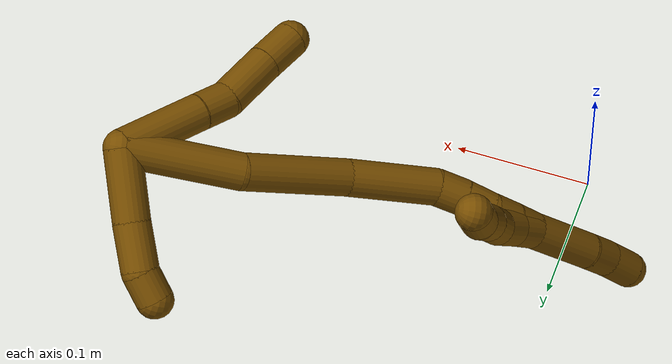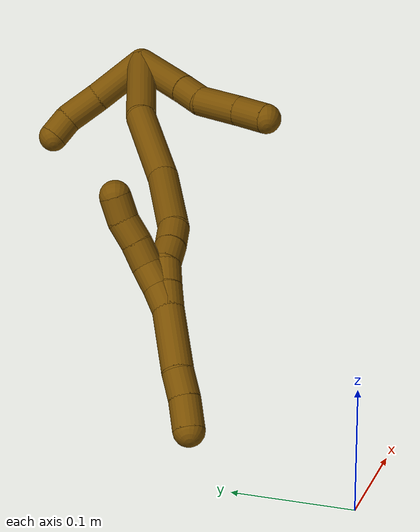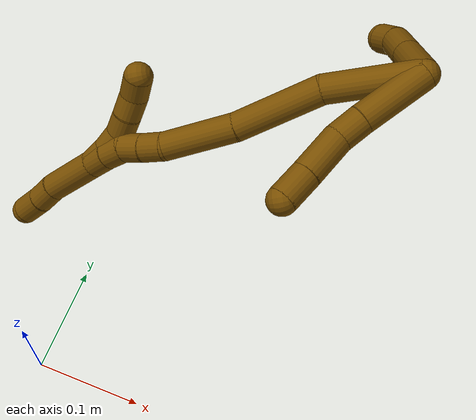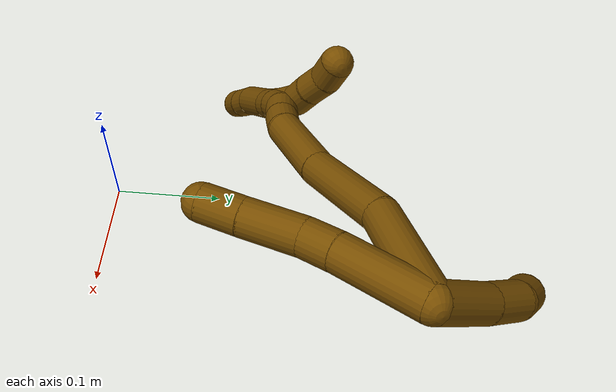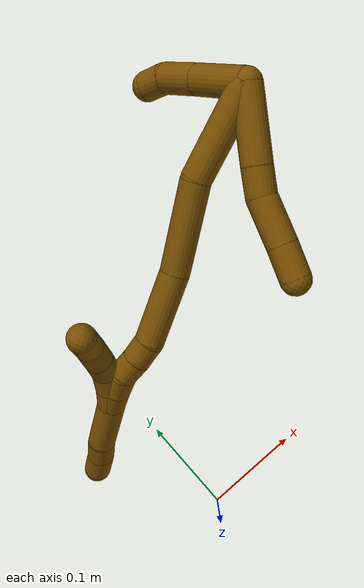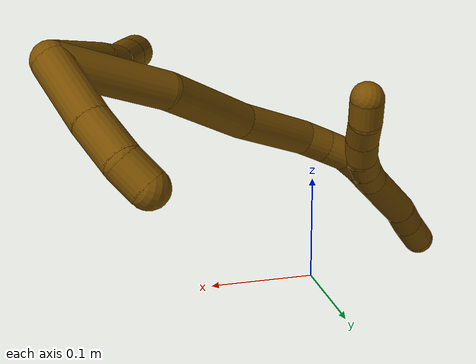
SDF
<sdf version="1.7">
 <world name="default">
  <model name="12">
   <static>0</static>
   <link name="12">
    <collision name="collision-cylinder-e_1_2_8">
     <pose>-0.00915 -0.014722 -0.024603 2.60237 -0.30892 -1.0262</pose>
     <geometry><cylinder><radius>0.0125</radius><length>0.060193</length></cylinder></geometry>
     <surface>
      <friction><ode><mu>1.16</mu><mu2>1.16</mu2><slip1>0</slip1><slip2>0</slip2></ode></friction>
      <contact><ode><kp>1e+06</kp><kd>1</kd><max_vel>0</max_vel><min_depth>0.001</min_depth></ode></contact>
     </surface>
    </collision>
    <visual name="visual-cylinder-e_1_2_8">
     <pose>-0.00915 -0.014722 -0.024603 2.60237 -0.30892 -1.0262</pose>
     <geometry><cylinder><radius>0.0125</radius><length>0.060193</length></cylinder></geometry>
     <material><ambient>0.466667 0.301961 0 1</ambient></material>
    </visual>
    <collision name="collision-cylinder-e_2_8_9">
     <pose>-0.021217 -0.035491 -0.058573 2.56833 -0.255907 -0.82314</pose>
     <geometry><cylinder><radius>0.0125</radius><length>0.023047</length></cylinder></geometry>
     <surface>
      <friction><ode><mu>1.16</mu><mu2>1.16</mu2><slip1>0</slip1><slip2>0</slip2></ode></friction>
      <contact><ode><kp>1e+06</kp><kd>1</kd><max_vel>0</max_vel><min_depth>0.001</min_depth></ode></contact>
     </surface>
    </collision>
    <visual name="visual-cylinder-e_2_8_9">
     <pose>-0.021217 -0.035491 -0.058573 2.56833 -0.255907 -0.82314</pose>
     <geometry><cylinder><radius>0.0125</radius><length>0.023047</length></cylinder></geometry>
     <material><ambient>0.466667 0.301961 0 1</ambient></material>
    </visual>
    <collision name="collision-cylinder-e_3_9_10">
     <pose>-0.032401 -0.054687 -0.08006 2.31553 -0.432995 -0.930303</pose>
     <geometry><cylinder><radius>0.0125</radius><length>0.039404</length></cylinder></geometry>
     <surface>
      <friction><ode><mu>1.16</mu><mu2>1.16</mu2><slip1>0</slip1><slip2>0</slip2></ode></friction>
      <contact><ode><kp>1e+06</kp><kd>1</kd><max_vel>0</max_vel><min_depth>0.001</min_depth></ode></contact>
     </surface>
    </collision>
    <visual name="visual-cylinder-e_3_9_10">
     <pose>-0.032401 -0.054687 -0.08006 2.31553 -0.432995 -0.930303</pose>
     <geometry><cylinder><radius>0.0125</radius><length>0.039404</length></cylinder></geometry>
     <material><ambient>0.466667 0.301961 0 1</ambient></material>
    </visual>
    <collision name="collision-cylinder-e_4_10_6">
     <pose>-0.046311 -0.076708 -0.100929 2.34916 -0.425325 -0.952969</pose>
     <geometry><cylinder><radius>0.0125</radius><length>0.027356</length></cylinder></geometry>
     <surface>
      <friction><ode><mu>1.16</mu><mu2>1.16</mu2><slip1>0</slip1><slip2>0</slip2></ode></friction>
      <contact><ode><kp>1e+06</kp><kd>1</kd><max_vel>0</max_vel><min_depth>0.001</min_depth></ode></contact>
     </surface>
    </collision>
    <visual name="visual-cylinder-e_4_10_6">
     <pose>-0.046311 -0.076708 -0.100929 2.34916 -0.425325 -0.952969</pose>
     <geometry><cylinder><radius>0.0125</radius><length>0.027356</length></cylinder></geometry>
     <material><ambient>0.466667 0.301961 0 1</ambient></material>
    </visual>
    <collision name="collision-cylinder-e_1_2_11">
     <pose>0.017825 0.014305 -0.007143 -2.0339 0.839633 -1.25039</pose>
     <geometry><cylinder><radius>0.0125</radius><length>0.047891</length></cylinder></geometry>
     <surface>
      <friction><ode><mu>1.16</mu><mu2>1.16</mu2><slip1>0</slip1><slip2>0</slip2></ode></friction>
      <contact><ode><kp>1e+06</kp><kd>1</kd><max_vel>0</max_vel><min_depth>0.001</min_depth></ode></contact>
     </surface>
    </collision>
    <visual name="visual-cylinder-e_1_2_11">
     <pose>0.017825 0.014305 -0.007143 -2.0339 0.839633 -1.25039</pose>
     <geometry><cylinder><radius>0.0125</radius><length>0.047891</length></cylinder></geometry>
     <material><ambient>0.466667 0.301961 0 1</ambient></material>
    </visual>
    <collision name="collision-cylinder-e_2_11_12">
     <pose>0.046742 0.038826 -0.019555 -2.04702 0.767581 -1.17045</pose>
     <geometry><cylinder><radius>0.0125</radius><length>0.031949</length></cylinder></geometry>
     <surface>
      <friction><ode><mu>1.16</mu><mu2>1.16</mu2><slip1>0</slip1><slip2>0</slip2></ode></friction>
      <contact><ode><kp>1e+06</kp><kd>1</kd><max_vel>0</max_vel><min_depth>0.001</min_depth></ode></contact>
     </surface>
    </collision>
    <visual name="visual-cylinder-e_2_11_12">
     <pose>0.046742 0.038826 -0.019555 -2.04702 0.767581 -1.17045</pose>
     <geometry><cylinder><radius>0.0125</radius><length>0.031949</length></cylinder></geometry>
     <material><ambient>0.466667 0.301961 0 1</ambient></material>
    </visual>
    <collision name="collision-cylinder-e_3_12_5">
     <pose>0.064157 0.05375 -0.031108 -2.49853 0.677881 -1.62753</pose>
     <geometry><cylinder><radius>0.0125</radius><length>0.02016</length></cylinder></geometry>
     <surface>
      <friction><ode><mu>1.16</mu><mu2>1.16</mu2><slip1>0</slip1><slip2>0</slip2></ode></friction>
      <contact><ode><kp>1e+06</kp><kd>1</kd><max_vel>0</max_vel><min_depth>0.001</min_depth></ode></contact>
     </surface>
    </collision>
    <visual name="visual-cylinder-e_3_12_5">
     <pose>0.064157 0.05375 -0.031108 -2.49853 0.677881 -1.62753</pose>
     <geometry><cylinder><radius>0.0125</radius><length>0.02016</length></cylinder></geometry>
     <material><ambient>0.466667 0.301961 0 1</ambient></material>
    </visual>
    <collision name="collision-cylinder-e_1_2_13">
     <pose>-0.0012 0.002417 -0.039649 -3.08072 -0.030191 0.920638</pose>
     <geometry><cylinder><radius>0.0125</radius><length>0.079481</length></cylinder></geometry>
     <surface>
      <friction><ode><mu>1.16</mu><mu2>1.16</mu2><slip1>0</slip1><slip2>0</slip2></ode></friction>
      <contact><ode><kp>1e+06</kp><kd>1</kd><max_vel>0</max_vel><min_depth>0.001</min_depth></ode></contact>
     </surface>
    </collision>
    <visual name="visual-cylinder-e_1_2_13">
     <pose>-0.0012 0.002417 -0.039649 -3.08072 -0.030191 0.920638</pose>
     <geometry><cylinder><radius>0.0125</radius><length>0.079481</length></cylinder></geometry>
     <material><ambient>0.466667 0.301961 0 1</ambient></material>
    </visual>
    <collision name="collision-cylinder-e_2_13_14">
     <pose>-0.002551 -0.003069 -0.116676 2.93325 -0.003968 -0.037949</pose>
     <geometry><cylinder><radius>0.0125</radius><length>0.076409</length></cylinder></geometry>
     <surface>
      <friction><ode><mu>1.16</mu><mu2>1.16</mu2><slip1>0</slip1><slip2>0</slip2></ode></friction>
      <contact><ode><kp>1e+06</kp><kd>1</kd><max_vel>0</max_vel><min_depth>0.001</min_depth></ode></contact>
     </surface>
    </collision>
    <visual name="visual-cylinder-e_2_13_14">
     <pose>-0.002551 -0.003069 -0.116676 2.93325 -0.003968 -0.037949</pose>
     <geometry><cylinder><radius>0.0125</radius><length>0.076409</length></cylinder></geometry>
     <material><ambient>0.466667 0.301961 0 1</ambient></material>
    </visual>
    <collision name="collision-cylinder-e_3_14_15">
     <pose>-0.004223 -0.013244 -0.185807 3.07011 -0.04774 -1.17744</pose>
     <geometry><cylinder><radius>0.0125</radius><length>0.063741</length></cylinder></geometry>
     <surface>
      <friction><ode><mu>1.16</mu><mu2>1.16</mu2><slip1>0</slip1><slip2>0</slip2></ode></friction>
      <contact><ode><kp>1e+06</kp><kd>1</kd><max_vel>0</max_vel><min_depth>0.001</min_depth></ode></contact>
     </surface>
    </collision>
    <visual name="visual-cylinder-e_3_14_15">
     <pose>-0.004223 -0.013244 -0.185807 3.07011 -0.04774 -1.17744</pose>
     <geometry><cylinder><radius>0.0125</radius><length>0.063741</length></cylinder></geometry>
     <material><ambient>0.466667 0.301961 0 1</ambient></material>
    </visual>
    <collision name="collision-cylinder-e_4_15_16">
     <pose>-0.004647 -0.014022 -0.227571 -2.99319 0.108028 -1.25765</pose>
     <geometry><cylinder><radius>0.0125</radius><length>0.020363</length></cylinder></geometry>
     <surface>
      <friction><ode><mu>1.16</mu><mu2>1.16</mu2><slip1>0</slip1><slip2>0</slip2></ode></friction>
      <contact><ode><kp>1e+06</kp><kd>1</kd><max_vel>0</max_vel><min_depth>0.001</min_depth></ode></contact>
     </surface>
    </collision>
    <visual name="visual-cylinder-e_4_15_16">
     <pose>-0.004647 -0.014022 -0.227571 -2.99319 0.108028 -1.25765</pose>
     <geometry><cylinder><radius>0.0125</radius><length>0.020363</length></cylinder></geometry>
     <material><ambient>0.466667 0.301961 0 1</ambient></material>
    </visual>
    <collision name="collision-cylinder-e_5_16_17">
     <pose>-0.002013 -0.010276 -0.247205 -2.912 0.15421 -1.18066</pose>
     <geometry><cylinder><radius>0.0125</radius><length>0.020003</length></cylinder></geometry>
     <surface>
      <friction><ode><mu>1.16</mu><mu2>1.16</mu2><slip1>0</slip1><slip2>0</slip2></ode></friction>
      <contact><ode><kp>1e+06</kp><kd>1</kd><max_vel>0</max_vel><min_depth>0.001</min_depth></ode></contact>
     </surface>
    </collision>
    <visual name="visual-cylinder-e_5_16_17">
     <pose>-0.002013 -0.010276 -0.247205 -2.912 0.15421 -1.18066</pose>
     <geometry><cylinder><radius>0.0125</radius><length>0.020003</length></cylinder></geometry>
     <material><ambient>0.466667 0.301961 0 1</ambient></material>
    </visual>
    <collision name="collision-cylinder-e_6_17_18">
     <pose>0.002347 -0.008998 -0.266373 3.04015 0.286171 2.46403</pose>
     <geometry><cylinder><radius>0.0125</radius><length>0.020001</length></cylinder></geometry>
     <surface>
      <friction><ode><mu>1.16</mu><mu2>1.16</mu2><slip1>0</slip1><slip2>0</slip2></ode></friction>
      <contact><ode><kp>1e+06</kp><kd>1</kd><max_vel>0</max_vel><min_depth>0.001</min_depth></ode></contact>
     </surface>
    </collision>
    <visual name="visual-cylinder-e_6_17_18">
     <pose>0.002347 -0.008998 -0.266373 3.04015 0.286171 2.46403</pose>
     <geometry><cylinder><radius>0.0125</radius><length>0.020001</length></cylinder></geometry>
     <material><ambient>0.466667 0.301961 0 1</ambient></material>
    </visual>
    <collision name="collision-cylinder-e_7_18_1">
     <pose>0.008603 -0.0115 -0.285185 2.97789 0.350488 2.27384</pose>
     <geometry><cylinder><radius>0.0125</radius><length>0.020001</length></cylinder></geometry>
     <surface>
      <friction><ode><mu>1.16</mu><mu2>1.16</mu2><slip1>0</slip1><slip2>0</slip2></ode></friction>
      <contact><ode><kp>1e+06</kp><kd>1</kd><max_vel>0</max_vel><min_depth>0.001</min_depth></ode></contact>
     </surface>
    </collision>
    <visual name="visual-cylinder-e_7_18_1">
     <pose>0.008603 -0.0115 -0.285185 2.97789 0.350488 2.27384</pose>
     <geometry><cylinder><radius>0.0125</radius><length>0.020001</length></cylinder></geometry>
     <material><ambient>0.466667 0.301961 0 1</ambient></material>
    </visual>
    <collision name="collision-cylinder-e_1_1_19">
     <pose>0.01957 -0.01808 -0.319105 2.93959 0.290852 1.93096</pose>
     <geometry><cylinder><radius>0.0125</radius><length>0.052536</length></cylinder></geometry>
     <surface>
      <friction><ode><mu>1.16</mu><mu2>1.16</mu2><slip1>0</slip1><slip2>0</slip2></ode></friction>
      <contact><ode><kp>1e+06</kp><kd>1</kd><max_vel>0</max_vel><min_depth>0.001</min_depth></ode></contact>
     </surface>
    </collision>
    <visual name="visual-cylinder-e_1_1_19">
     <pose>0.01957 -0.01808 -0.319105 2.93959 0.290852 1.93096</pose>
     <geometry><cylinder><radius>0.0125</radius><length>0.052536</length></cylinder></geometry>
     <material><ambient>0.466667 0.301961 0 1</ambient></material>
    </visual>
    <collision name="collision-cylinder-e_2_19_20">
     <pose>0.031126 -0.026642 -0.353498 2.79539 0.370645 1.64043</pose>
     <geometry><cylinder><radius>0.0125</radius><length>0.022216</length></cylinder></geometry>
     <surface>
      <friction><ode><mu>1.16</mu><mu2>1.16</mu2><slip1>0</slip1><slip2>0</slip2></ode></friction>
      <contact><ode><kp>1e+06</kp><kd>1</kd><max_vel>0</max_vel><min_depth>0.001</min_depth></ode></contact>
     </surface>
    </collision>
    <visual name="visual-cylinder-e_2_19_20">
     <pose>0.031126 -0.026642 -0.353498 2.79539 0.370645 1.64043</pose>
     <geometry><cylinder><radius>0.0125</radius><length>0.022216</length></cylinder></geometry>
     <material><ambient>0.466667 0.301961 0 1</ambient></material>
    </visual>
    <collision name="collision-cylinder-e_3_20_4">
     <pose>0.039927 -0.032848 -0.374608 2.90914 0.388091 2.06943</pose>
     <geometry><cylinder><radius>0.0125</radius><length>0.025248</length></cylinder></geometry>
     <surface>
      <friction><ode><mu>1.16</mu><mu2>1.16</mu2><slip1>0</slip1><slip2>0</slip2></ode></friction>
      <contact><ode><kp>1e+06</kp><kd>1</kd><max_vel>0</max_vel><min_depth>0.001</min_depth></ode></contact>
     </surface>
    </collision>
    <visual name="visual-cylinder-e_3_20_4">
     <pose>0.039927 -0.032848 -0.374608 2.90914 0.388091 2.06943</pose>
     <geometry><cylinder><radius>0.0125</radius><length>0.025248</length></cylinder></geometry>
     <material><ambient>0.466667 0.301961 0 1</ambient></material>
    </visual>
    <collision name="collision-cylinder-e_1_1_21">
     <pose>0.009663 -0.008796 -0.28571 -0.451179 -0.2397 0.055261</pose>
     <geometry><cylinder><radius>0.0125</radius><length>0.02</length></cylinder></geometry>
     <surface>
      <friction><ode><mu>1.16</mu><mu2>1.16</mu2><slip1>0</slip1><slip2>0</slip2></ode></friction>
      <contact><ode><kp>1e+06</kp><kd>1</kd><max_vel>0</max_vel><min_depth>0.001</min_depth></ode></contact>
     </surface>
    </collision>
    <visual name="visual-cylinder-e_1_1_21">
     <pose>0.009663 -0.008796 -0.28571 -0.451179 -0.2397 0.055261</pose>
     <geometry><cylinder><radius>0.0125</radius><length>0.02</length></cylinder></geometry>
     <material><ambient>0.466667 0.301961 0 1</ambient></material>
    </visual>
    <collision name="collision-cylinder-e_2_21_22">
     <pose>0.004622 0.000563 -0.268804 -0.560389 -0.269922 0.078109</pose>
     <geometry><cylinder><radius>0.0125</radius><length>0.02</length></cylinder></geometry>
     <surface>
      <friction><ode><mu>1.16</mu><mu2>1.16</mu2><slip1>0</slip1><slip2>0</slip2></ode></friction>
      <contact><ode><kp>1e+06</kp><kd>1</kd><max_vel>0</max_vel><min_depth>0.001</min_depth></ode></contact>
     </surface>
    </collision>
    <visual name="visual-cylinder-e_2_21_22">
     <pose>0.004622 0.000563 -0.268804 -0.560389 -0.269922 0.078109</pose>
     <geometry><cylinder><radius>0.0125</radius><length>0.02</length></cylinder></geometry>
     <material><ambient>0.466667 0.301961 0 1</ambient></material>
    </visual>
    <collision name="collision-cylinder-e_3_22_23">
     <pose>-0.003009 0.011463 -0.254162 -0.728269 -0.519553 0.201907</pose>
     <geometry><cylinder><radius>0.0125</radius><length>0.02</length></cylinder></geometry>
     <surface>
      <friction><ode><mu>1.16</mu><mu2>1.16</mu2><slip1>0</slip1><slip2>0</slip2></ode></friction>
      <contact><ode><kp>1e+06</kp><kd>1</kd><max_vel>0</max_vel><min_depth>0.001</min_depth></ode></contact>
     </surface>
    </collision>
    <visual name="visual-cylinder-e_3_22_23">
     <pose>-0.003009 0.011463 -0.254162 -0.728269 -0.519553 0.201907</pose>
     <geometry><cylinder><radius>0.0125</radius><length>0.02</length></cylinder></geometry>
     <material><ambient>0.466667 0.301961 0 1</ambient></material>
    </visual>
    <collision name="collision-cylinder-e_4_23_24">
     <pose>-0.012242 0.023774 -0.241431 -0.807373 -0.440965 0.190887</pose>
     <geometry><cylinder><radius>0.0125</radius><length>0.02</length></cylinder></geometry>
     <surface>
      <friction><ode><mu>1.16</mu><mu2>1.16</mu2><slip1>0</slip1><slip2>0</slip2></ode></friction>
      <contact><ode><kp>1e+06</kp><kd>1</kd><max_vel>0</max_vel><min_depth>0.001</min_depth></ode></contact>
     </surface>
    </collision>
    <visual name="visual-cylinder-e_4_23_24">
     <pose>-0.012242 0.023774 -0.241431 -0.807373 -0.440965 0.190887</pose>
     <geometry><cylinder><radius>0.0125</radius><length>0.02</length></cylinder></geometry>
     <material><ambient>0.466667 0.301961 0 1</ambient></material>
    </visual>
    <collision name="collision-cylinder-e_5_24_3">
     <pose>-0.022988 0.03548 -0.229585 -0.74624 -0.704632 0.28588</pose>
     <geometry><cylinder><radius>0.0125</radius><length>0.02</length></cylinder></geometry>
     <surface>
      <friction><ode><mu>1.16</mu><mu2>1.16</mu2><slip1>0</slip1><slip2>0</slip2></ode></friction>
      <contact><ode><kp>1e+06</kp><kd>1</kd><max_vel>0</max_vel><min_depth>0.001</min_depth></ode></contact>
     </surface>
    </collision>
    <visual name="visual-cylinder-e_5_24_3">
     <pose>-0.022988 0.03548 -0.229585 -0.74624 -0.704632 0.28588</pose>
     <geometry><cylinder><radius>0.0125</radius><length>0.02</length></cylinder></geometry>
     <material><ambient>0.466667 0.301961 0 1</ambient></material>
    </visual>
    <collision name="collision-sphere-3">
     <pose>-0.029465 0.040652 -0.223991 0 -0 0</pose>
     <geometry><sphere><radius>0.0125</radius></sphere></geometry>
     <surface>
      <friction><ode><mu>1.16</mu><mu2>1.16</mu2><slip1>0</slip1><slip2>0</slip2></ode></friction>
      <contact><ode><kp>1e+06</kp><kd>1</kd><max_vel>0</max_vel><min_depth>0.001</min_depth></ode></contact>
     </surface>
    </collision>
    <visual name="visual-sphere-3">
     <pose>-0.029465 0.040652 -0.223991 0 -0 0</pose>
     <geometry><sphere><radius>0.0125</radius></sphere></geometry>
     <material><ambient>0.466667 0.301961 0 1</ambient></material>
    </visual>
    <collision name="collision-sphere-24">
     <pose>-0.01651 0.030308 -0.235178 0 -0 0</pose>
     <geometry><sphere><radius>0.0125</radius></sphere></geometry>
     <surface>
      <friction><ode><mu>1.16</mu><mu2>1.16</mu2><slip1>0</slip1><slip2>0</slip2></ode></friction>
      <contact><ode><kp>1e+06</kp><kd>1</kd><max_vel>0</max_vel><min_depth>0.001</min_depth></ode></contact>
     </surface>
    </collision>
    <visual name="visual-sphere-24">
     <pose>-0.01651 0.030308 -0.235178 0 -0 0</pose>
     <geometry><sphere><radius>0.0125</radius></sphere></geometry>
     <material><ambient>0.466667 0.301961 0 1</ambient></material>
    </visual>
    <collision name="collision-sphere-23">
     <pose>-0.007974 0.01724 -0.247684 0 -0 0</pose>
     <geometry><sphere><radius>0.0125</radius></sphere></geometry>
     <surface>
      <friction><ode><mu>1.16</mu><mu2>1.16</mu2><slip1>0</slip1><slip2>0</slip2></ode></friction>
      <contact><ode><kp>1e+06</kp><kd>1</kd><max_vel>0</max_vel><min_depth>0.001</min_depth></ode></contact>
     </surface>
    </collision>
    <visual name="visual-sphere-23">
     <pose>-0.007974 0.01724 -0.247684 0 -0 0</pose>
     <geometry><sphere><radius>0.0125</radius></sphere></geometry>
     <material><ambient>0.466667 0.301961 0 1</ambient></material>
    </visual>
    <collision name="collision-sphere-22">
     <pose>0.001956 0.005685 -0.26064 0 -0 0</pose>
     <geometry><sphere><radius>0.0125</radius></sphere></geometry>
     <surface>
      <friction><ode><mu>1.16</mu><mu2>1.16</mu2><slip1>0</slip1><slip2>0</slip2></ode></friction>
      <contact><ode><kp>1e+06</kp><kd>1</kd><max_vel>0</max_vel><min_depth>0.001</min_depth></ode></contact>
     </surface>
    </collision>
    <visual name="visual-sphere-22">
     <pose>0.001956 0.005685 -0.26064 0 -0 0</pose>
     <geometry><sphere><radius>0.0125</radius></sphere></geometry>
     <material><ambient>0.466667 0.301961 0 1</ambient></material>
    </visual>
    <collision name="collision-sphere-21">
     <pose>0.007289 -0.00456 -0.276968 0 -0 0</pose>
     <geometry><sphere><radius>0.0125</radius></sphere></geometry>
     <surface>
      <friction><ode><mu>1.16</mu><mu2>1.16</mu2><slip1>0</slip1><slip2>0</slip2></ode></friction>
      <contact><ode><kp>1e+06</kp><kd>1</kd><max_vel>0</max_vel><min_depth>0.001</min_depth></ode></contact>
     </surface>
    </collision>
    <visual name="visual-sphere-21">
     <pose>0.007289 -0.00456 -0.276968 0 -0 0</pose>
     <geometry><sphere><radius>0.0125</radius></sphere></geometry>
     <material><ambient>0.466667 0.301961 0 1</ambient></material>
    </visual>
    <collision name="collision-sphere-4">
     <pose>0.044704 -0.035539 -0.385979 0 -0 0</pose>
     <geometry><sphere><radius>0.0125</radius></sphere></geometry>
     <surface>
      <friction><ode><mu>1.16</mu><mu2>1.16</mu2><slip1>0</slip1><slip2>0</slip2></ode></friction>
      <contact><ode><kp>1e+06</kp><kd>1</kd><max_vel>0</max_vel><min_depth>0.001</min_depth></ode></contact>
     </surface>
    </collision>
    <visual name="visual-sphere-4">
     <pose>0.044704 -0.035539 -0.385979 0 -0 0</pose>
     <geometry><sphere><radius>0.0125</radius></sphere></geometry>
     <material><ambient>0.466667 0.301961 0 1</ambient></material>
    </visual>
    <collision name="collision-sphere-20">
     <pose>0.03515 -0.030156 -0.363237 0 -0 0</pose>
     <geometry><sphere><radius>0.0125</radius></sphere></geometry>
     <surface>
      <friction><ode><mu>1.16</mu><mu2>1.16</mu2><slip1>0</slip1><slip2>0</slip2></ode></friction>
      <contact><ode><kp>1e+06</kp><kd>1</kd><max_vel>0</max_vel><min_depth>0.001</min_depth></ode></contact>
     </surface>
    </collision>
    <visual name="visual-sphere-20">
     <pose>0.03515 -0.030156 -0.363237 0 -0 0</pose>
     <geometry><sphere><radius>0.0125</radius></sphere></geometry>
     <material><ambient>0.466667 0.301961 0 1</ambient></material>
    </visual>
    <collision name="collision-sphere-11">
     <pose>0.03565 0.02861 -0.014286 0 -0 0</pose>
     <geometry><sphere><radius>0.0125</radius></sphere></geometry>
     <surface>
      <friction><ode><mu>1.16</mu><mu2>1.16</mu2><slip1>0</slip1><slip2>0</slip2></ode></friction>
      <contact><ode><kp>1e+06</kp><kd>1</kd><max_vel>0</max_vel><min_depth>0.001</min_depth></ode></contact>
     </surface>
    </collision>
    <visual name="visual-sphere-11">
     <pose>0.03565 0.02861 -0.014286 0 -0 0</pose>
     <geometry><sphere><radius>0.0125</radius></sphere></geometry>
     <material><ambient>0.466667 0.301961 0 1</ambient></material>
    </visual>
    <collision name="collision-sphere-6">
     <pose>-0.051955 -0.08558 -0.109677 0 -0 0</pose>
     <geometry><sphere><radius>0.0125</radius></sphere></geometry>
     <surface>
      <friction><ode><mu>1.16</mu><mu2>1.16</mu2><slip1>0</slip1><slip2>0</slip2></ode></friction>
      <contact><ode><kp>1e+06</kp><kd>1</kd><max_vel>0</max_vel><min_depth>0.001</min_depth></ode></contact>
     </surface>
    </collision>
    <visual name="visual-sphere-6">
     <pose>-0.051955 -0.08558 -0.109677 0 -0 0</pose>
     <geometry><sphere><radius>0.0125</radius></sphere></geometry>
     <material><ambient>0.466667 0.301961 0 1</ambient></material>
    </visual>
    <collision name="collision-sphere-10">
     <pose>-0.040668 -0.067836 -0.092182 0 -0 0</pose>
     <geometry><sphere><radius>0.0125</radius></sphere></geometry>
     <surface>
      <friction><ode><mu>1.16</mu><mu2>1.16</mu2><slip1>0</slip1><slip2>0</slip2></ode></friction>
      <contact><ode><kp>1e+06</kp><kd>1</kd><max_vel>0</max_vel><min_depth>0.001</min_depth></ode></contact>
     </surface>
    </collision>
    <visual name="visual-sphere-10">
     <pose>-0.040668 -0.067836 -0.092182 0 -0 0</pose>
     <geometry><sphere><radius>0.0125</radius></sphere></geometry>
     <material><ambient>0.466667 0.301961 0 1</ambient></material>
    </visual>
    <collision name="collision-sphere-9">
     <pose>-0.024134 -0.041537 -0.067939 0 -0 0</pose>
     <geometry><sphere><radius>0.0125</radius></sphere></geometry>
     <surface>
      <friction><ode><mu>1.16</mu><mu2>1.16</mu2><slip1>0</slip1><slip2>0</slip2></ode></friction>
      <contact><ode><kp>1e+06</kp><kd>1</kd><max_vel>0</max_vel><min_depth>0.001</min_depth></ode></contact>
     </surface>
    </collision>
    <visual name="visual-sphere-9">
     <pose>-0.024134 -0.041537 -0.067939 0 -0 0</pose>
     <geometry><sphere><radius>0.0125</radius></sphere></geometry>
     <material><ambient>0.466667 0.301961 0 1</ambient></material>
    </visual>
    <collision name="collision-sphere-2">
     <geometry><sphere><radius>0.0125</radius></sphere></geometry>
     <surface>
      <friction><ode><mu>1.16</mu><mu2>1.16</mu2><slip1>0</slip1><slip2>0</slip2></ode></friction>
      <contact><ode><kp>1e+06</kp><kd>1</kd><max_vel>0</max_vel><min_depth>0.001</min_depth></ode></contact>
     </surface>
    </collision>
    <visual name="visual-sphere-2">
     <geometry><sphere><radius>0.0125</radius></sphere></geometry>
     <material><ambient>0.466667 0.301961 0 1</ambient></material>
    </visual>
    <collision name="collision-sphere-19">
     <pose>0.027103 -0.023129 -0.343758 0 -0 0</pose>
     <geometry><sphere><radius>0.0125</radius></sphere></geometry>
     <surface>
      <friction><ode><mu>1.16</mu><mu2>1.16</mu2><slip1>0</slip1><slip2>0</slip2></ode></friction>
      <contact><ode><kp>1e+06</kp><kd>1</kd><max_vel>0</max_vel><min_depth>0.001</min_depth></ode></contact>
     </surface>
    </collision>
    <visual name="visual-sphere-19">
     <pose>0.027103 -0.023129 -0.343758 0 -0 0</pose>
     <geometry><sphere><radius>0.0125</radius></sphere></geometry>
     <material><ambient>0.466667 0.301961 0 1</ambient></material>
    </visual>
    <collision name="collision-sphere-8">
     <pose>-0.0183 -0.029444 -0.049207 0 -0 0</pose>
     <geometry><sphere><radius>0.0125</radius></sphere></geometry>
     <surface>
      <friction><ode><mu>1.16</mu><mu2>1.16</mu2><slip1>0</slip1><slip2>0</slip2></ode></friction>
      <contact><ode><kp>1e+06</kp><kd>1</kd><max_vel>0</max_vel><min_depth>0.001</min_depth></ode></contact>
     </surface>
    </collision>
    <visual name="visual-sphere-8">
     <pose>-0.0183 -0.029444 -0.049207 0 -0 0</pose>
     <geometry><sphere><radius>0.0125</radius></sphere></geometry>
     <material><ambient>0.466667 0.301961 0 1</ambient></material>
    </visual>
    <collision name="collision-sphere-12">
     <pose>0.057835 0.049042 -0.024825 0 -0 0</pose>
     <geometry><sphere><radius>0.0125</radius></sphere></geometry>
     <surface>
      <friction><ode><mu>1.16</mu><mu2>1.16</mu2><slip1>0</slip1><slip2>0</slip2></ode></friction>
      <contact><ode><kp>1e+06</kp><kd>1</kd><max_vel>0</max_vel><min_depth>0.001</min_depth></ode></contact>
     </surface>
    </collision>
    <visual name="visual-sphere-12">
     <pose>0.057835 0.049042 -0.024825 0 -0 0</pose>
     <geometry><sphere><radius>0.0125</radius></sphere></geometry>
     <material><ambient>0.466667 0.301961 0 1</ambient></material>
    </visual>
    <collision name="collision-sphere-5">
     <pose>0.070478 0.058459 -0.037391 0 -0 0</pose>
     <geometry><sphere><radius>0.0125</radius></sphere></geometry>
     <surface>
      <friction><ode><mu>1.16</mu><mu2>1.16</mu2><slip1>0</slip1><slip2>0</slip2></ode></friction>
      <contact><ode><kp>1e+06</kp><kd>1</kd><max_vel>0</max_vel><min_depth>0.001</min_depth></ode></contact>
     </surface>
    </collision>
    <visual name="visual-sphere-5">
     <pose>0.070478 0.058459 -0.037391 0 -0 0</pose>
     <geometry><sphere><radius>0.0125</radius></sphere></geometry>
     <material><ambient>0.466667 0.301961 0 1</ambient></material>
    </visual>
    <collision name="collision-sphere-13">
     <pose>-0.002399 0.004833 -0.079298 0 -0 0</pose>
     <geometry><sphere><radius>0.0125</radius></sphere></geometry>
     <surface>
      <friction><ode><mu>1.16</mu><mu2>1.16</mu2><slip1>0</slip1><slip2>0</slip2></ode></friction>
      <contact><ode><kp>1e+06</kp><kd>1</kd><max_vel>0</max_vel><min_depth>0.001</min_depth></ode></contact>
     </surface>
    </collision>
    <visual name="visual-sphere-13">
     <pose>-0.002399 0.004833 -0.079298 0 -0 0</pose>
     <geometry><sphere><radius>0.0125</radius></sphere></geometry>
     <material><ambient>0.466667 0.301961 0 1</ambient></material>
    </visual>
    <collision name="collision-sphere-14">
     <pose>-0.002702 -0.010971 -0.154054 0 -0 0</pose>
     <geometry><sphere><radius>0.0125</radius></sphere></geometry>
     <surface>
      <friction><ode><mu>1.16</mu><mu2>1.16</mu2><slip1>0</slip1><slip2>0</slip2></ode></friction>
      <contact><ode><kp>1e+06</kp><kd>1</kd><max_vel>0</max_vel><min_depth>0.001</min_depth></ode></contact>
     </surface>
    </collision>
    <visual name="visual-sphere-14">
     <pose>-0.002702 -0.010971 -0.154054 0 -0 0</pose>
     <geometry><sphere><radius>0.0125</radius></sphere></geometry>
     <material><ambient>0.466667 0.301961 0 1</ambient></material>
    </visual>
    <collision name="collision-sphere-15">
     <pose>-0.005744 -0.015518 -0.21756 0 -0 0</pose>
     <geometry><sphere><radius>0.0125</radius></sphere></geometry>
     <surface>
      <friction><ode><mu>1.16</mu><mu2>1.16</mu2><slip1>0</slip1><slip2>0</slip2></ode></friction>
      <contact><ode><kp>1e+06</kp><kd>1</kd><max_vel>0</max_vel><min_depth>0.001</min_depth></ode></contact>
     </surface>
    </collision>
    <visual name="visual-sphere-15">
     <pose>-0.005744 -0.015518 -0.21756 0 -0 0</pose>
     <geometry><sphere><radius>0.0125</radius></sphere></geometry>
     <material><ambient>0.466667 0.301961 0 1</ambient></material>
    </visual>
    <collision name="collision-sphere-16">
     <pose>-0.003549 -0.012525 -0.237582 0 -0 0</pose>
     <geometry><sphere><radius>0.0125</radius></sphere></geometry>
     <surface>
      <friction><ode><mu>1.16</mu><mu2>1.16</mu2><slip1>0</slip1><slip2>0</slip2></ode></friction>
      <contact><ode><kp>1e+06</kp><kd>1</kd><max_vel>0</max_vel><min_depth>0.001</min_depth></ode></contact>
     </surface>
    </collision>
    <visual name="visual-sphere-16">
     <pose>-0.003549 -0.012525 -0.237582 0 -0 0</pose>
     <geometry><sphere><radius>0.0125</radius></sphere></geometry>
     <material><ambient>0.466667 0.301961 0 1</ambient></material>
    </visual>
    <collision name="collision-sphere-17">
     <pose>-0.000476 -0.008027 -0.256829 0 -0 0</pose>
     <geometry><sphere><radius>0.0125</radius></sphere></geometry>
     <surface>
      <friction><ode><mu>1.16</mu><mu2>1.16</mu2><slip1>0</slip1><slip2>0</slip2></ode></friction>
      <contact><ode><kp>1e+06</kp><kd>1</kd><max_vel>0</max_vel><min_depth>0.001</min_depth></ode></contact>
     </surface>
    </collision>
    <visual name="visual-sphere-17">
     <pose>-0.000476 -0.008027 -0.256829 0 -0 0</pose>
     <geometry><sphere><radius>0.0125</radius></sphere></geometry>
     <material><ambient>0.466667 0.301961 0 1</ambient></material>
    </visual>
    <collision name="collision-sphere-18">
     <pose>0.00517 -0.00997 -0.275918 0 -0 0</pose>
     <geometry><sphere><radius>0.0125</radius></sphere></geometry>
     <surface>
      <friction><ode><mu>1.16</mu><mu2>1.16</mu2><slip1>0</slip1><slip2>0</slip2></ode></friction>
      <contact><ode><kp>1e+06</kp><kd>1</kd><max_vel>0</max_vel><min_depth>0.001</min_depth></ode></contact>
     </surface>
    </collision>
    <visual name="visual-sphere-18">
     <pose>0.00517 -0.00997 -0.275918 0 -0 0</pose>
     <geometry><sphere><radius>0.0125</radius></sphere></geometry>
     <material><ambient>0.466667 0.301961 0 1</ambient></material>
    </visual>
    <collision name="collision-sphere-1">
     <pose>0.012037 -0.013031 -0.294452 0 -0 0</pose>
     <geometry><sphere><radius>0.0125</radius></sphere></geometry>
     <surface>
      <friction><ode><mu>1.16</mu><mu2>1.16</mu2><slip1>0</slip1><slip2>0</slip2></ode></friction>
      <contact><ode><kp>1e+06</kp><kd>1</kd><max_vel>0</max_vel><min_depth>0.001</min_depth></ode></contact>
     </surface>
    </collision>
    <visual name="visual-sphere-1">
     <pose>0.012037 -0.013031 -0.294452 0 -0 0</pose>
     <geometry><sphere><radius>0.0125</radius></sphere></geometry>
     <material><ambient>0.466667 0.301961 0 1</ambient></material>
    </visual>
    <inertial>
     <pose>0.00244 -0.00781 -0.152708 0 -0 0</pose>
     <mass>0.75</mass>
     <inertia><ixx>9e-05</ixx><ixy>0</ixy><ixz>0</ixz><iyy>-7e-05</iyy><iyz>0</iyz><izz>-2.4e-05</izz></inertia>
    </inertial>
   </link>
   <pose>0.245104 0.26021 0.271316 0.643189 1.07844 1.09315</pose>
  </model>
 </world>
</sdf>
